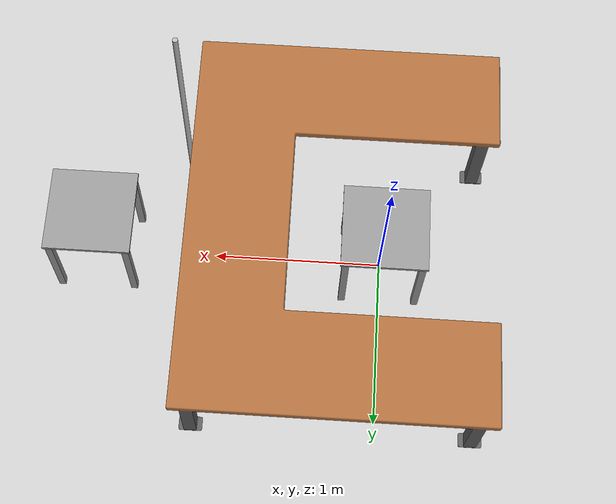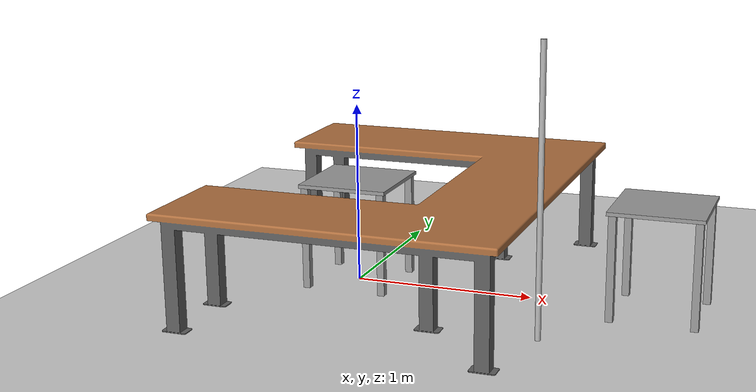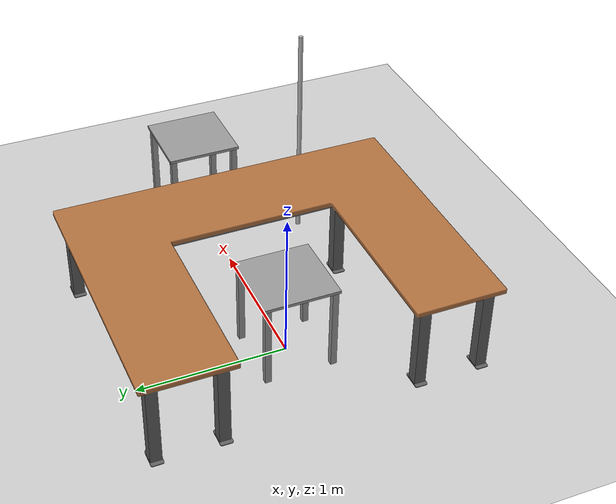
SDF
<sdf version="1.6">
 <world name="default">
  <include><uri>model://ground_plane</uri></include>
  <include><uri>model://sun</uri></include>
  <include><uri>model://surgery_table</uri><pose>0.25 0 0 0 0 0</pose></include>
  <include><uri>model://ur5_base</uri><name>ur5e_base</name></include>
  <include><uri>model://ur5_base</uri><name>ur5_base</name><pose>1.7 0 0 0 0 0</pose></include>
  <include><uri>model://lamp</uri><pose>1.2 -0.6 0 0 0 1</pose></include>
 </world>
</sdf>

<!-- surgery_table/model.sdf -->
<sdf version="1.5">
  <model name="surgery_table">
    <static>true</static>
    <link name="link">
      <inertial>
        <mass>2</mass>
        <pose frame=''>0 0 0 0 0 0</pose>
        <inertia>
          <ixx>0.1</ixx>
          <ixy>0</ixy>
          <ixz>0</ixz>
          <iyy>0.1</iyy>
          <iyz>0</iyz>
          <izz>0.1</izz>
        </inertia>
      </inertial>

      <collision name="collision">
        <geometry>
         <mesh>
		  <scale>0.01 0.01 0.01</scale>
          <uri>model://surgery_table/meshes/surgery_table.dae</uri>
         </mesh>
        </geometry>
        <surface>
          <friction>
            <ode>
              <mu>100</mu>
              <mu2>50</mu2>
            </ode>
          </friction>
        </surface>
      </collision>
      <visual name="visual">
        <cast_shadows>false</cast_shadows>
        <geometry>
		 <mesh>
		  <scale>0.01 0.01 0.01</scale>
          <uri>model://surgery_table/meshes/surgery_table.dae</uri>
         </mesh>
        </geometry>
      </visual>
    </link>
  </model>
</sdf>

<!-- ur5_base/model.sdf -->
<sdf version="1.6">
  <model name="ur5_base">
    <static>true</static>

    <link name="top_plate">
      <pose>0 0 0.58 0 0 0</pose>
      <collision name="top_plate_collision">
        <geometry>
          <box>
            <size>0.5 0.5 0.02</size>
          </box>
        </geometry>
        <surface>
          <contact>
            <collide_bitmask>0x01</collide_bitmask>
          </contact>
        </surface>
      </collision>
      <visual name="top_plate_visual">
        <geometry>
          <box>
            <size>0.5 0.5 0.02</size>
          </box>
        </geometry>
        <material>
          <script>
            <uri>file://media/materials/scripts/gazebo.material</uri>
            <name>Gazebo/Grey</name>
          </script>
        </material>
      </visual>
    </link>
    <link name="leg1">
      <pose>0.22 0.22 0.285 0 0 0</pose>
      <collision name="leg1_collision">
        <geometry>
          <box>
            <size>0.04 0.04 0.57</size>
          </box>
        </geometry>
      </collision>
      <visual name="leg1_visual">
        <geometry>
          <box>
            <size>0.04 0.04 0.57</size>
          </box>
        </geometry>
        <material>
          <script>
            <uri>file://media/materials/scripts/gazebo.material</uri>
            <name>Gazebo/Grey</name>
          </script>
        </material>
      </visual>
    </link>
    <link name="leg2">
      <pose>-0.22 0.22 0.285 0 0 0</pose>
      <collision name="leg2_collision">
        <geometry>
          <box>
            <size>0.04 0.04 0.57</size>
          </box>
        </geometry>
      </collision>
      <visual name="leg2_visual">
        <geometry>
          <box>
            <size>0.04 0.04 0.57</size>
          </box>
        </geometry>
        <material>
          <script>
            <uri>file://media/materials/scripts/gazebo.material</uri>
            <name>Gazebo/Grey</name>
          </script>
        </material>
      </visual>
    </link>
    <link name="leg3">
      <pose>0.22 -0.22 0.285 0 0 0</pose>
      <collision name="leg3_collision">
        <geometry>
          <box>
            <size>0.04 0.04 0.57</size>
          </box>
        </geometry>
      </collision>
      <visual name="leg3_visual">
        <geometry>
          <box>
            <size>0.04 0.04 0.57</size>
          </box>
        </geometry>
        <material>
          <script>
            <uri>file://media/materials/scripts/gazebo.material</uri>
            <name>Gazebo/Grey</name>
          </script>
        </material>
      </visual>
    </link>
    <link name="leg4">
      <pose>-0.22 -0.22 0.285 0 0 0</pose>
      <collision name="leg4_collision">
        <geometry>
          <box>
            <size>0.04 0.04 0.57</size>
          </box>
        </geometry>
      </collision>
      <visual name="leg4_visual">
        <geometry>
          <box>
            <size>0.04 0.04 0.57</size>
          </box>
        </geometry>
        <material>
          <script>
            <uri>file://media/materials/scripts/gazebo.material</uri>
            <name>Gazebo/Grey</name>
          </script>
        </material>
      </visual>
    </link>
  </model>
</sdf>

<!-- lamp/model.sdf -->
<sdf version="1.6">
  <model name="rwc2023/lamp">
    <static>true</static>
    <link name="2_link">
      <collision name="2_col">
        <geometry>
            <cylinder>
                <radius>0.015</radius>
                <length>1.5</length>
            </cylinder>
        </geometry>
      </collision>
      <visual name="2_vis">
        <geometry>
            <cylinder>
                <radius>0.015</radius>
                <length>1.5</length>
            </cylinder>
        </geometry>
      </visual>
      <pose>0.0 0.0 0.75 0 0 0</pose>
    </link>
  </model>
</sdf>
